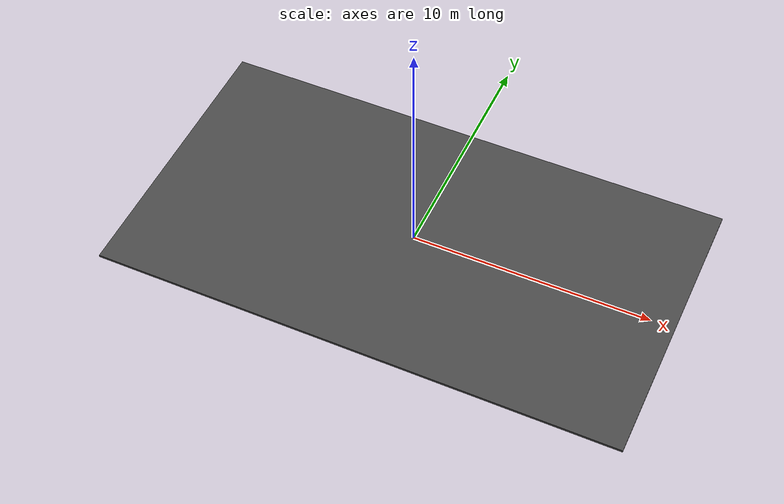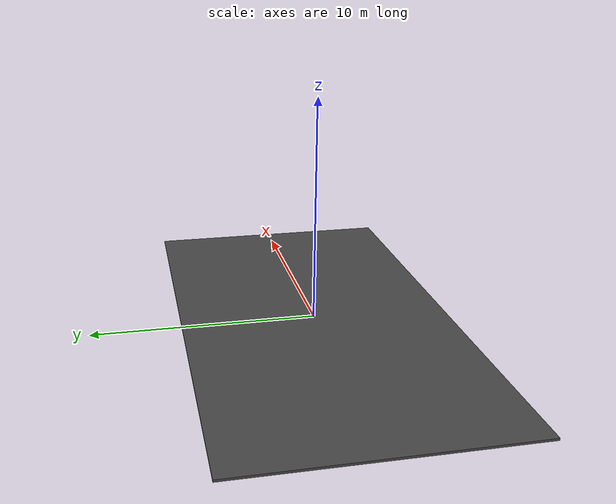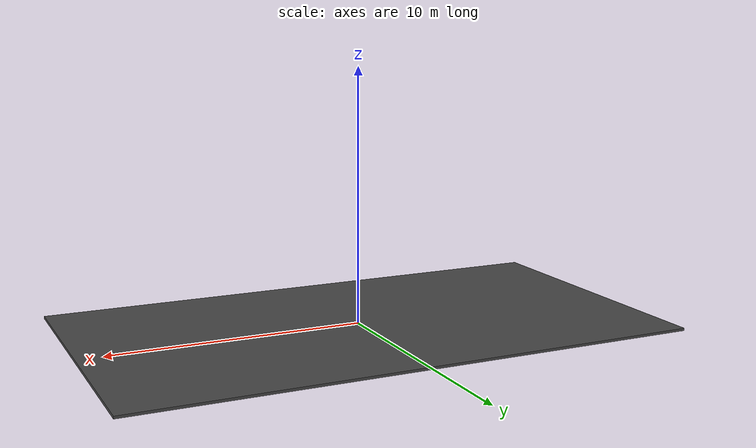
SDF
<?xml version="1.0" ?>
<sdf version="1.5">
  <model name="asphalt_plane_long">
    <static>true</static>
    <link name="link">
      <collision name="collision">
        <geometry>
          <box>
            <size>22 12 .1</size>
          </box>
        </geometry>
      </collision>
      <visual name="visual">
        <cast_shadows>false</cast_shadows>
        <geometry>
          <box>
            <size>22 12 .1</size>
          </box>
        </geometry>
        <material>
          <script>
            <uri>model://asphalt_plane_long/materials/scripts</uri>
            <uri>model://asphalt_plane_long/materials/textures</uri>
            <name>vrc/asphalt</name>
          </script>
        </material>
      </visual>
    </link>
  </model>
</sdf>
